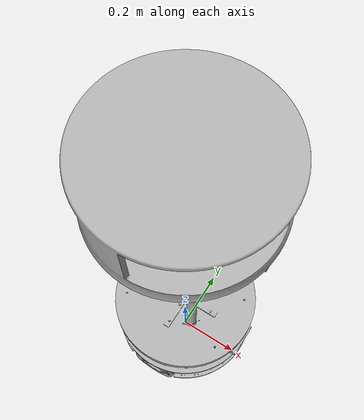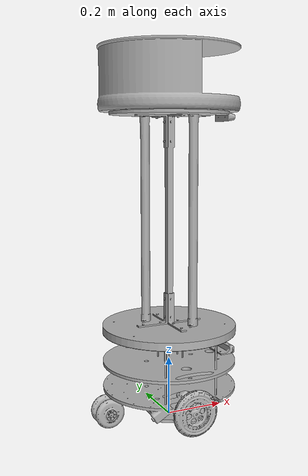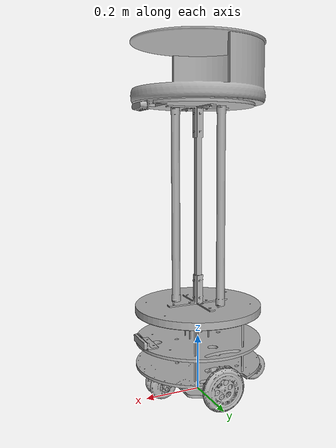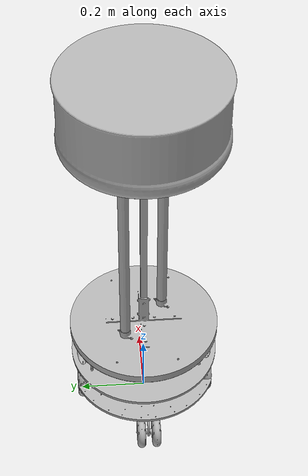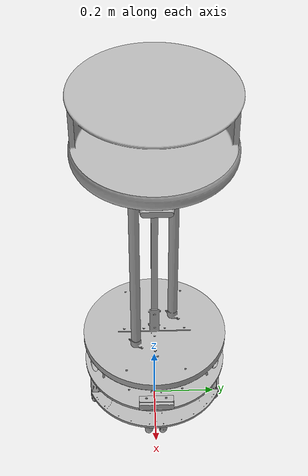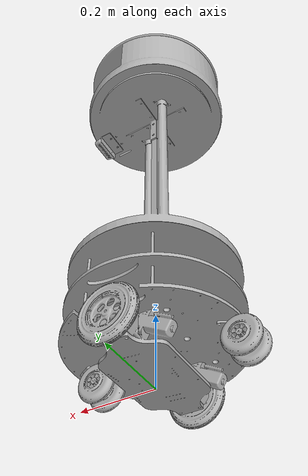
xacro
<?xml version="1.0" ?>
<robot name="robotPV_V1" xmlns:xacro="http://www.ros.org/wiki/xacro">

<xacro:include filename="$(find robotPV_V1_description)/urdf/materials.xacro" />
<xacro:include filename="$(find robotPV_V1_description)/urdf/robotPV_V1.trans" />
<xacro:include filename="$(find robotPV_V1_description)/urdf/robotPV_V1.gazebo" />
<link name="base_link">
  <inertial>
    <origin xyz="-0.0036107342004369214 5.806314570340318e-06 0.13211969797103357" rpy="0 0 0"/>
    <mass value="3.9399570503509223"/>
    <inertia ixx="0.063072" iyy="0.060342" izz="0.087364" ixy="-0.0" iyz="2e-06" ixz="-0.000773"/>
  </inertial>
  <visual>
    <origin xyz="0 0 0" rpy="0 0 0"/>
    <geometry>
      <mesh filename="package://robotPV_V1_description/meshes/base_link.stl" scale="0.001 0.001 0.001"/>
    </geometry>
    <material name="silver"/>
  </visual>
  <collision>
    <origin xyz="0 0 0" rpy="0 0 0"/>
    <geometry>
      <mesh filename="package://robotPV_V1_description/meshes/base_link.stl" scale="0.001 0.001 0.001"/>
    </geometry>
  </collision>
</link>

<link name="front_caster_base_link_1">
  <inertial>
    <origin xyz="-0.016295118229952638 -9.60533271267989e-05 -0.021677343403545837" rpy="0 0 0"/>
    <mass value="0.010793096828982782"/>
    <inertia ixx="3e-06" iyy="5e-06" izz="3e-06" ixy="-0.0" iyz="-0.0" ixz="-2e-06"/>
  </inertial>
  <visual>
    <origin xyz="-0.185146 -0.0 -0.09525" rpy="0 0 0"/>
    <geometry>
      <mesh filename="package://robotPV_V1_description/meshes/front_caster_base_link_1.stl" scale="0.001 0.001 0.001"/>
    </geometry>
    <material name="silver"/>
  </visual>
  <collision>
    <origin xyz="-0.185146 -0.0 -0.09525" rpy="0 0 0"/>
    <geometry>
      <mesh filename="package://robotPV_V1_description/meshes/front_caster_base_link_1.stl" scale="0.001 0.001 0.001"/>
    </geometry>
  </collision>
</link>

<link name="back_caster_base_link_1">
  <inertial>
    <origin xyz="-0.0162953111359046 3.172126970186083e-07 -0.021677343403551458" rpy="0 0 0"/>
    <mass value="0.010793096828982782"/>
    <inertia ixx="3e-06" iyy="5e-06" izz="3e-06" ixy="0.0" iyz="0.0" ixz="-2e-06"/>
  </inertial>
  <visual>
    <origin xyz="0.185134 -0.0 -0.09525" rpy="0 0 0"/>
    <geometry>
      <mesh filename="package://robotPV_V1_description/meshes/back_caster_base_link_1.stl" scale="0.001 0.001 0.001"/>
    </geometry>
    <material name="silver"/>
  </visual>
  <collision>
    <origin xyz="0.185134 -0.0 -0.09525" rpy="0 0 0"/>
    <geometry>
      <mesh filename="package://robotPV_V1_description/meshes/back_caster_base_link_1.stl" scale="0.001 0.001 0.001"/>
    </geometry>
  </collision>
</link>

<link name="right_wheel_link_1">
  <inertial>
    <origin xyz="4.441203159116726e-05 -8.785050037096731e-06 9.413313841494242e-06" rpy="0 0 0"/>
    <mass value="0.3408727525278476"/>
    <inertia ixx="0.000585" iyy="0.001134" izz="0.000584" ixy="0.0" iyz="0.0" ixz="0.0"/>
  </inertial>
  <visual>
    <origin xyz="-6e-06 0.197739 -0.0762" rpy="0 0 0"/>
    <geometry>
      <mesh filename="package://robotPV_V1_description/meshes/right_wheel_link_1.stl" scale="0.001 0.001 0.001"/>
    </geometry>
    <material name="silver"/>
  </visual>
  <collision>
    <origin xyz="-6e-06 0.197739 -0.0762" rpy="0 0 0"/>
    <geometry>
      <mesh filename="package://robotPV_V1_description/meshes/right_wheel_link_1.stl" scale="0.001 0.001 0.001"/>
    </geometry>
  </collision>
</link>

<link name="left_wheel_link_1">
  <inertial>
    <origin xyz="-4.459789063504783e-05 8.69501956068941e-06 9.413313842299154e-06" rpy="0 0 0"/>
    <mass value="0.3408727525278476"/>
    <inertia ixx="0.000585" iyy="0.001134" izz="0.000584" ixy="0.0" iyz="-0.0" ixz="-0.0"/>
  </inertial>
  <visual>
    <origin xyz="-6e-06 -0.197739 -0.0762" rpy="0 0 0"/>
    <geometry>
      <mesh filename="package://robotPV_V1_description/meshes/left_wheel_link_1.stl" scale="0.001 0.001 0.001"/>
    </geometry>
    <material name="silver"/>
  </visual>
  <collision>
    <origin xyz="-6e-06 -0.197739 -0.0762" rpy="0 0 0"/>
    <geometry>
      <mesh filename="package://robotPV_V1_description/meshes/left_wheel_link_1.stl" scale="0.001 0.001 0.001"/>
    </geometry>
  </collision>
</link>

<link name="front_castor_link_1">
  <inertial>
    <origin xyz="-1.906281575436708e-05 0.003174421742765952 1.5265566588595902e-15" rpy="0 0 0"/>
    <mass value="0.29898231985900336"/>
    <inertia ixx="0.000345" iyy="0.000352" izz="0.000345" ixy="-0.0" iyz="-0.0" ixz="-0.0"/>
  </inertial>
  <visual>
    <origin xyz="-0.146213 0.003405 -0.048514" rpy="0 0 0"/>
    <geometry>
      <mesh filename="package://robotPV_V1_description/meshes/front_castor_link_1.stl" scale="0.001 0.001 0.001"/>
    </geometry>
    <material name="silver"/>
  </visual>
  <collision>
    <origin xyz="-0.146213 0.003405 -0.048514" rpy="0 0 0"/>
    <geometry>
      <mesh filename="package://robotPV_V1_description/meshes/front_castor_link_1.stl" scale="0.001 0.001 0.001"/>
    </geometry>
  </collision>
</link>

<link name="back_castor_link_1">
  <inertial>
    <origin xyz="3.4491911815592857e-07 -0.0031808118574478696 -4.045375145977914e-15" rpy="0 0 0"/>
    <mass value="0.29898231985900336"/>
    <inertia ixx="0.000345" iyy="0.000352" izz="0.000345" ixy="-0.0" iyz="0.0" ixz="-0.0"/>
  </inertial>
  <visual>
    <origin xyz="0.224087 -0.003175 -0.048514" rpy="0 0 0"/>
    <geometry>
      <mesh filename="package://robotPV_V1_description/meshes/back_castor_link_1.stl" scale="0.001 0.001 0.001"/>
    </geometry>
    <material name="silver"/>
  </visual>
  <collision>
    <origin xyz="0.224087 -0.003175 -0.048514" rpy="0 0 0"/>
    <geometry>
      <mesh filename="package://robotPV_V1_description/meshes/back_castor_link_1.stl" scale="0.001 0.001 0.001"/>
    </geometry>
  </collision>
</link>

<link name="t265_link_1">
  <inertial>
    <origin xyz="-0.014772220508856376 0.0007656456936754774 0.008403229697358655" rpy="0 0 0"/>
    <mass value="0.04138408026743239"/>
    <inertia ixx="4.3e-05" iyy="1e-05" izz="4.8e-05" ixy="-0.0" iyz="-0.0" ixz="-2e-06"/>
  </inertial>
  <visual>
    <origin xyz="-0.221796 0.0 -0.19965" rpy="0 0 0"/>
    <geometry>
      <mesh filename="package://robotPV_V1_description/meshes/t265_link_1.stl" scale="0.001 0.001 0.001"/>
    </geometry>
    <material name="silver"/>
  </visual>
  <collision>
    <origin xyz="-0.221796 0.0 -0.19965" rpy="0 0 0"/>
    <geometry>
      <mesh filename="package://robotPV_V1_description/meshes/t265_link_1.stl" scale="0.001 0.001 0.001"/>
    </geometry>
  </collision>
</link>

<link name="laser_link_1">
  <inertial>
    <origin xyz="0.012336970357441685 -0.00037270594953361637 0.014931299289251937" rpy="0 0 0"/>
    <mass value="0.07338073679887232"/>
    <inertia ixx="3.5e-05" iyy="6.7e-05" izz="7.5e-05" ixy="-1e-06" iyz="0.0" ixz="5e-06"/>
  </inertial>
  <visual>
    <origin xyz="-6e-06 0.0 -0.239652" rpy="0 0 0"/>
    <geometry>
      <mesh filename="package://robotPV_V1_description/meshes/laser_link_1.stl" scale="0.001 0.001 0.001"/>
    </geometry>
    <material name="silver"/>
  </visual>
  <collision>
    <origin xyz="-6e-06 0.0 -0.239652" rpy="0 0 0"/>
    <geometry>
      <mesh filename="package://robotPV_V1_description/meshes/laser_link_1.stl" scale="0.001 0.001 0.001"/>
    </geometry>
  </collision>
</link>
<link name="depth_camera_link">
    <origin xyz="0 0 0" rpy="0 0 0" />
</link>
<link name="odom_256_link">
    <origin xyz="0 0 0" rpy="0 0 0" />
</link>
<link name="body_link_1">
  <inertial>
    <origin xyz="-0.0014571345229504428 -5.2419596615885934e-08 0.34651599919682247" rpy="0 0 0"/>
    <mass value="7.418925935917177"/>
    <inertia ixx="0.913306" iyy="0.911525" izz="0.152554" ixy="0.003547" iyz="-0.0" ixz="0.004092"/>
  </inertial>
  <visual>
    <origin xyz="-6e-06 0.0 -0.297082" rpy="0 0 0"/>
    <geometry>
      <mesh filename="package://robotPV_V1_description/meshes/body_link_1.stl" scale="0.001 0.001 0.001"/>
    </geometry>
    <material name="silver"/>
  </visual>
  <collision>
    <origin xyz="-6e-06 0.0 -0.297082" rpy="0 0 0"/>
    <geometry>
      <mesh filename="package://robotPV_V1_description/meshes/body_link_1.stl" scale="0.001 0.001 0.001"/>
    </geometry>
  </collision>
</link>

<link name="compartment_link_1">
  <inertial>
    <origin xyz="-0.04615849357190875 -5.327610671740457e-08 0.09178442515283436" rpy="0 0 0"/>
    <mass value="1"/>
    <inertia ixx="0.121693" iyy="0.110548" izz="0.167562" ixy="-0.0" iyz="0.0" ixz="0.000782"/>
  </inertial>
  <visual>
    <origin xyz="-6e-06 0.0 -1.042082" rpy="0 0 0"/>
    <geometry>
      <mesh filename="package://robotPV_V1_description/meshes/compartment_link_1.stl" scale="0.001 0.001 0.001"/>
    </geometry>
    <material name="silver"/>
  </visual>
  <collision>
    <origin xyz="-6e-06 0.0 -1.042082" rpy="0 0 0"/>
    <geometry>
      <mesh filename="package://robotPV_V1_description/meshes/compartment_link_1.stl" scale="0.001 0.001 0.001"/>
    </geometry>
  </collision>
</link>

<link name="D435i_link_1">
  <inertial>
    <origin xyz="0.002982548026999987 -7.159743539005768e-06 -0.01263400909620871" rpy="0 0 0"/>
    <mass value="0.062035228314442525"/>
    <inertia ixx="4.3e-05" iyy="1.8e-05" izz="5.3e-05" ixy="0.0" iyz="-0.0" ixz="4e-06"/>
  </inertial>
  <visual>
    <origin xyz="-0.180336 0.0 -1.027082" rpy="0 0 0"/>
    <geometry>
      <mesh filename="package://robotPV_V1_description/meshes/D435i_link_1.stl" scale="0.001 0.001 0.001"/>
    </geometry>
    <material name="silver"/>
  </visual>
  <collision>
    <origin xyz="-0.180336 0.0 -1.027082" rpy="0 0 0"/>
    <geometry>
      <mesh filename="package://robotPV_V1_description/meshes/D435i_link_1.stl" scale="0.001 0.001 0.001"/>
    </geometry>
  </collision>
</link>

<joint name="Revolute_1" type="continuous">
  <origin xyz="0.185146 0.0 0.09525" rpy="0 0 0"/>
  <parent link="base_link"/>
  <child link="front_caster_base_link_1"/>
  <axis xyz="0.0 -0.0 -1.0"/>
</joint>

<joint name="Revolute_2" type="continuous">
  <origin xyz="-0.185134 0.0 0.09525" rpy="0 0 0"/>
  <parent link="base_link"/>
  <child link="back_caster_base_link_1"/>
  <axis xyz="0.0 -0.0 -1.0"/>
</joint>

<joint name="Revolute_3" type="continuous">
  <origin xyz="6e-06 -0.197739 0.0762" rpy="0 0 0"/>
  <parent link="base_link"/>
  <child link="right_wheel_link_1"/>
  <axis xyz="-0.0 1.0 -0.0"/>
</joint>

<joint name="Revolute_4" type="continuous">
  <origin xyz="6e-06 0.197739 0.0762" rpy="0 0 0"/>
  <parent link="base_link"/>
  <child link="left_wheel_link_1"/>
  <axis xyz="0.0 1.0 -0.0"/>
</joint>

<joint name="Revolute_5" type="continuous">
  <origin xyz="-0.038933 -0.003405 -0.046736" rpy="0 0 0"/>
  <parent link="front_caster_base_link_1"/>
  <child link="front_castor_link_1"/>
  <axis xyz="-0.005914 0.999983 -0.0"/>
</joint>

<joint name="Revolute_6" type="continuous">
  <origin xyz="-0.038953 0.003175 -0.046736" rpy="0 0 0"/>
  <parent link="back_caster_base_link_1"/>
  <child link="back_castor_link_1"/>
  <axis xyz="0.0 -1.0 -0.0"/>
</joint>

<joint name="Rigid 11" type="fixed">
  <origin xyz="0.221796 0.0 0.19965" rpy="0 0 0"/>
  <parent link="base_link"/>
  <child link="t265_link_1"/>
</joint>

<joint name="Rigid 14" type="fixed">
  <origin xyz="6e-06 0.0 0.239652" rpy="0 0 0"/>
  <parent link="base_link"/>
  <child link="laser_link_1"/>
</joint>

<joint name="Rigid 17" type="fixed">
  <origin xyz="6e-06 0.0 0.297082" rpy="0 0 0"/>
  <parent link="base_link"/>
  <child link="body_link_1"/>
</joint>

<joint name="Rigid 18" type="fixed">
  <origin xyz="0.0 0.0 0.745" rpy="0 0 0"/>
  <parent link="body_link_1"/>
  <child link="compartment_link_1"/>
</joint>

<joint name="Rigid 19" type="fixed">
  <origin xyz="0.2 0.0 0.73" rpy="0 0 0"/>
  <parent link="body_link_1"/>
  <child link="D435i_link_1"/>
</joint>
<joint name="depth_camera_joint" type="fixed">
        <origin xyz="0 0 0" rpy="-1.57 0 -1.57" />
        <parent link="D435i_link_1" />
        <child link="depth_camera_link" />
</joint>
<joint name="odom_t265_joint" type="fixed">
        <origin xyz="0 0 0" rpy="1.57 0 -1.57" />
        <parent link="t265_link_1" />
        <child link="odom_256_link" />
</joint>
</robot>

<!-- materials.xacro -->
<robot name="robotPV_V1" xmlns:xacro="http://www.ros.org/wiki/xacro" >

<material name="silver">
  <color rgba="0.700 0.700 0.700 1.000"/>
</material>

</robot>

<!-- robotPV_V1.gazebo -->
<robot name="robotPV_V1" xmlns:xacro="http://www.ros.org/wiki/xacro" >

<xacro:property name="body_color" value="Gazebo/Silver" />

<gazebo>
  <plugin name="control" filename="libgazebo_ros_control.so"/>
</gazebo>
<gazebo reference="base_link">
  <material>Gazebo/DarkGrey</material>
  <mu1>0.2</mu1>
  <mu2>0.2</mu2>
  <selfCollide>true</selfCollide>
  <gravity>true</gravity>
</gazebo>

<gazebo reference="front_caster_base_link_1">
  <material>Gazebo/Black</material>
  <mu1>0.2</mu1>
  <mu2>0.2</mu2>
  <selfCollide>true</selfCollide>
</gazebo>

<gazebo reference="back_caster_base_link_1">
  <material>Gazebo/Black</material>
  <mu1>0.2</mu1>
  <mu2>0.2</mu2>
  <selfCollide>true</selfCollide>
</gazebo>

<gazebo reference="right_wheel_link_1">
  <material>Gazebo/Grey</material>
  <mu1>0.2</mu1>
  <mu2>0.2</mu2>
  <selfCollide>true</selfCollide>
</gazebo>

<gazebo reference="left_wheel_link_1">
  <material>Gazebo/Grey</material>
  <mu1>0.2</mu1>
  <mu2>0.2</mu2>
  <selfCollide>true</selfCollide>
</gazebo>

<gazebo reference="front_castor_link_1">
  <material>Gazebo/Grey</material>
  <mu1>0.2</mu1>
  <mu2>0.2</mu2>
  <selfCollide>true</selfCollide>
</gazebo>

<gazebo reference="back_castor_link_1">
  <material>Gazebo/Grey</material>
  <mu1>0.2</mu1>
  <mu2>0.2</mu2>
  <selfCollide>true</selfCollide>
</gazebo>

<gazebo reference="t265_link_1">
  <material>Gazebo/Orange</material>
  <mu1>0.2</mu1>
  <mu2>0.2</mu2>
  <selfCollide>true</selfCollide>
</gazebo>

<gazebo reference="laser_link_1">
  <material>${body_color}</material>
  <mu1>0.2</mu1>
  <mu2>0.2</mu2>
  <selfCollide>true</selfCollide>
</gazebo>

<gazebo reference="body_link_1">
  <material>Gazebo/Grey</material>
  <mu1>0.2</mu1>
  <mu2>0.2</mu2>
  <selfCollide>true</selfCollide>
</gazebo>

<gazebo reference="compartment_link_1">
  <material>Gazebo/Turquoise</material>
  <mu1>0.2</mu1>
  <mu2>0.2</mu2>
  <selfCollide>true</selfCollide>
</gazebo>

<gazebo reference="D435i_link_1">
  <material>${body_color}</material>
  <mu1>0.2</mu1>
  <mu2>0.2</mu2>
  <selfCollide>true</selfCollide>
</gazebo>
<gazebo>
        <plugin name="turtlebot3_burger_controller" filename="libgazebo_ros_diff_drive.so">
            <commandTopic>cmd_vel</commandTopic>
            <odometryTopic>odom</odometryTopic>
            <odometryFrame>odom</odometryFrame>
            <odometrySource>world</odometrySource>
            <publishOdomTF>true</publishOdomTF>
            <robotBaseFrame>base_link</robotBaseFrame>
            <publishWheelTF>false</publishWheelTF>
            <publishTf>true</publishTf>
            <publishWheelJointState>true</publishWheelJointState>
            <legacyMode>false</legacyMode>
            <updateRate>30</updateRate>
            <leftJoint>Revolute_4</leftJoint>
            <rightJoint>Revolute_3</rightJoint>
            <wheelSeparation>0.3902</wheelSeparation>
            <wheelDiameter>0.156</wheelDiameter>
            <wheelAcceleration>1</wheelAcceleration>
            <wheelTorque>9.6</wheelTorque>
            <rosDebugLevel>na</rosDebugLevel>
        </plugin>
    </gazebo>
 <!-- depth camera -->
    <gazebo reference="D435i_link_1">
        <material>Gazebo/Orange</material>
        <sensor type="depth" name="realsense_R200">
            <always_on>true</always_on>
            <visualize>false</visualize>
            <camera>
                <horizontal_fov>1.5184</horizontal_fov>
                <image>
                    <width>470</width>
                    <height>270</height>
                    <format>R8G8B8</format>
                </image>
                <depth_camera></depth_camera>
                <clip>
                    <near>0.03</near>
                    <far>4</far>
                </clip>
            </camera>
            <plugin name="camera_controller" filename="libgazebo_ros_openni_kinect.so">
                <baseline>0.2</baseline>
                <alwaysOn>true</alwaysOn>
                <updateRate>15.0</updateRate>
                <cameraName>d435</cameraName>
                <frameName>depth_camera_link</frameName>
                <imageTopicName>rgb/image_raw</imageTopicName>
                <depthImageTopicName>depth/image_raw</depthImageTopicName>
                <pointCloudTopicName>depth/points</pointCloudTopicName>
                <cameraInfoTopicName>rgb/camera_info</cameraInfoTopicName>
                <depthImageCameraInfoTopicName>depth/camera_info</depthImageCameraInfoTopicName>
                <pointCloudCutoff>0.4</pointCloudCutoff>
                <hackBaseline>0.07</hackBaseline>
                <distortionK1>0.0</distortionK1>
                <distortionK2>0.0</distortionK2>
                <distortionK3>0.0</distortionK3>
                <distortionT1>0.0</distortionT1>
                <distortionT2>0.0</distortionT2>
                <CxPrime>0.0</CxPrime>
                <Cx>0.0</Cx>
                <Cy>0.0</Cy>
                <focalLength>0</focalLength>
                <hackBaseline>0</hackBaseline>
            </plugin>
        </sensor>
    </gazebo>
<gazebo reference="laser_link_1">
        <material>Gazebo/SkyBlue</material>
        <sensor type="ray" name="lds_lfcd_sensor">
            <pose>0 0 0 0 0 0</pose>
            <visualize>false</visualize>
            <update_rate>5.5</update_rate>
            <ray>
                <scan>
                    <horizontal>
                        <samples>360</samples>
                        <resolution>1</resolution>
                        <min_angle>0.0</min_angle>
                        <max_angle>6.28319</max_angle>
                    </horizontal>
                </scan>
                <range>
                    <min>0.15</min>
                    <max>12</max>
                    <resolution>0.015</resolution>
                </range>
                <noise>
                    <type>gaussian</type>
                    <mean>0.0</mean>
                    <stddev>0.01</stddev>
                </noise>
            </ray>
            <plugin name="gazebo_ros_lds_lfcd_controller" filename="libgazebo_ros_laser.so">
                <topicName>scan</topicName>
                <frameName>laser_link_1</frameName>
            </plugin>
        </sensor>
    </gazebo>

    <!-- imu -->
    <gazebo>
        <plugin name="imu_plugin" filename="libgazebo_ros_imu.so">
            <alwaysOn>true</alwaysOn>
            <bodyName>t265_link_1</bodyName>
            <frameName>t265_link_1</frameName>
            <topicName>imu</topicName>
            <serviceName>imu_service</serviceName>
            <gaussianNoise>0.0</gaussianNoise>
            <updateRate>30</updateRate>
            <imu>
                <noise>
                    <type>gaussian</type>
                    <rate>
                        <mean>0.0</mean>
                        <stddev>2e-4</stddev>
                        <bias_mean>0.0000075</bias_mean>
                        <bias_stddev>0.0000008</bias_stddev>
                    </rate>
                    <accel>
                        <mean>0.0</mean>
                        <stddev>1.7e-2</stddev>
                        <bias_mean>0.1</bias_mean>
                        <bias_stddev>0.001</bias_stddev>
                    </accel>
                </noise>
            </imu>
        </plugin>
    </gazebo>
        <gazebo reference="Revolute_4">
        <provideFeedback>true</provideFeedback>
    </gazebo>

    <gazebo reference="Revolute_3">
        <provideFeedback>true</provideFeedback>
    </gazebo>
        <!-- The ft_sensor plugin -->
    <gazebo>
        <plugin name="ft_sensor" filename="libgazebo_ros_ft_sensor.so">
            <updateRate>100.0</updateRate>
            <topicName>ft_sensor_llanta_izquierda</topicName>
            <jointName>Revolute_4</jointName>
        </plugin>
    </gazebo>
    <gazebo>
        <plugin name="ft_sensor" filename="libgazebo_ros_ft_sensor.so">
            <updateRate>100.0</updateRate>
            <topicName>ft_sensor_llanta_derecha</topicName>
            <jointName>Revolute_3</jointName>
        </plugin>
    </gazebo>
</robot>
